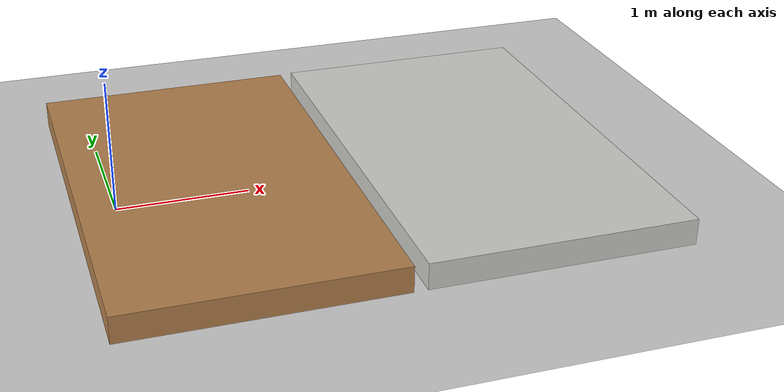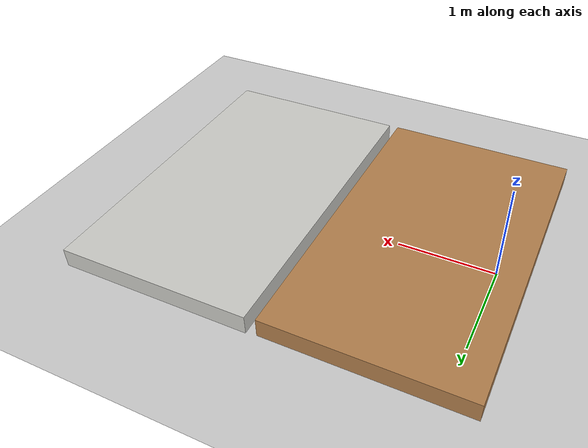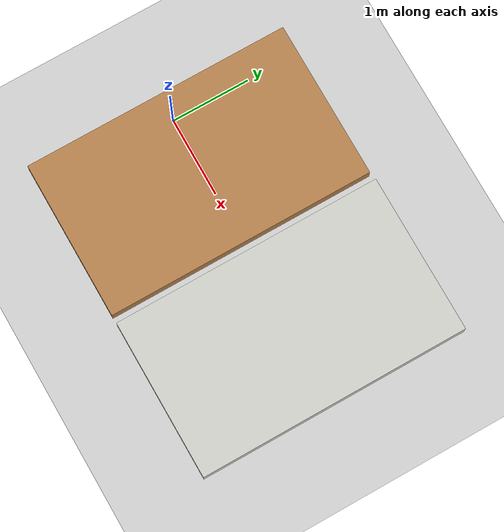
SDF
<sdf version="1.6">
 <world name="default">
  <light name="sun" type="directional">
   <pose>0 0 10 0 -0 0</pose>
   <diffuse>0.8 0.8 0.8 1</diffuse>
   <specular>0.1 0.1 0.1 1</specular>
   <attenuation>
    <range>1000</range>
    <constant>0.9</constant>
    <linear>0.01</linear>
    <quadratic>0.001</quadratic>
   </attenuation>
   <direction>-0.5 0.5 -1</direction>
  </light>
  <model name="ground_plane">
   <static>1</static>
   <link name="link">
    <collision name="collision">
     <geometry><plane><normal>0 0 1</normal><size>100 100</size></plane></geometry>
     <surface><friction><ode><mu>100</mu><mu2>50</mu2></ode></friction></surface>
    </collision>
    <visual name="visual">
     <cast_shadows>0</cast_shadows>
     <geometry><plane><normal>0 0 1</normal><size>100 100</size></plane></geometry>
     <material>
      <script><uri>file://media/materials/scripts/gazebo.material</uri><name>Gazebo/Grey</name></script>
     </material>
    </visual>
   </link>
  </model>
  <gravity>0 0 -9.8</gravity>
  <magnetic_field>6e-06 2.3e-05 -4.2e-05</magnetic_field>
  <atmosphere type="adiabatic"/>
  <physics name="default_physics" default="0" type="ode">
   <max_step_size>0.001</max_step_size>
   <real_time_factor>1</real_time_factor>
   <real_time_update_rate>1000</real_time_update_rate>
  </physics>
  <scene><ambient>0.4 0.4 0.4 1</ambient><background>0.7 0.7 0.7 1</background><shadows>1</shadows></scene>
  <spherical_coordinates>
   <surface_model>EARTH_WGS84</surface_model>
   <latitude_deg>0</latitude_deg>
   <longitude_deg>0</longitude_deg>
   <elevation>0</elevation>
   <heading_deg>0</heading_deg>
  </spherical_coordinates>
  <model name="Crevice_crossing">
   <pose>1.74481 -0.037568 0 0 -0 0</pose>
   <link name="Stairs_1">
    <visual name="Stairs_1_Visual_0">
     <pose>-1.05017 -0.009236 0.1 0 -0 0</pose>
     <geometry><box><size>2 3.37 0.2</size></box></geometry>
     <material>
      <script><uri>file://media/materials/scripts/gazebo.material</uri><name>Gazebo/Wood</name></script>
      <ambient>1 1 1 1</ambient>
     </material>
     <meta><layer>0</layer></meta>
    </visual>
    <collision name="Stairs_1_Collision_0">
     <geometry><box><size>2 3.37 0.2</size></box></geometry>
     <pose>-1.05017 -0.009236 0.1 0 -0 0</pose>
    </collision>
   </link>
   <link name="Stairs_3">
    <visual name="Stairs_3_Visual_0">
     <pose>1.05017 0.001236 0.1 0 -0 0</pose>
     <geometry><box><size>2 3.386 0.2</size></box></geometry>
     <material>
      <script><uri>file://media/materials/scripts/gazebo.material</uri><name>Gazebo/CeilingTiled</name></script>
      <ambient>1 1 1 1</ambient>
     </material>
     <meta><layer>0</layer></meta>
    </visual>
    <collision name="Stairs_3_Collision_0">
     <geometry><box><size>2 3.386 0.2</size></box></geometry>
     <pose>1.05017 0.001236 0.1 0 -0 0</pose>
    </collision>
   </link>
   <static>1</static>
  </model>
 </world>
</sdf>
